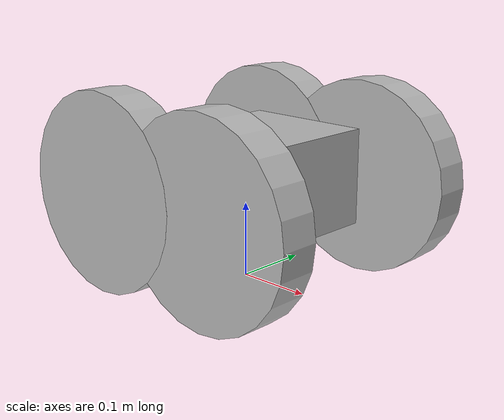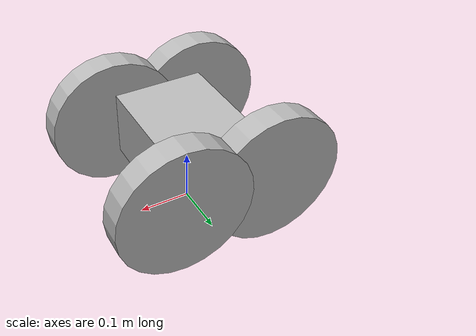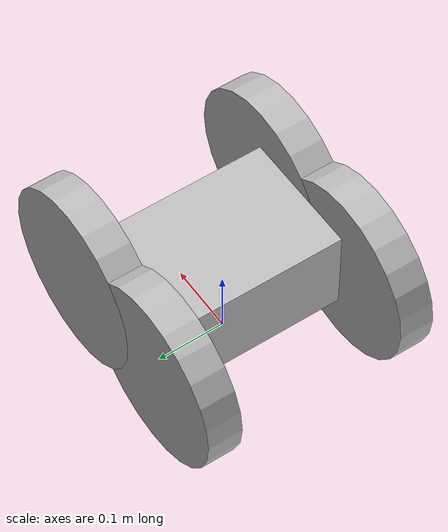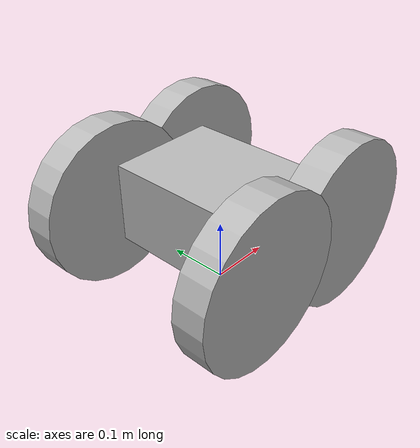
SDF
<?xml version='1.0'?>
<sdf version='1.3'>
  <model name="tank_tread">
    <link name='chassis'>
      <pose>0 0 .13 0 0 0</pose>
      <collision name='collision'>
        <geometry>
          <box>
            <size>.18 .25 .13</size>
          </box>
        </geometry>
      </collision>

      <visual name='visual'>
        <geometry>
          <box>
            <size>.18 .25 .13</size>
          </box>
        </geometry>
      </visual>
    </link>

  <link name="left_backwheel">
  	<pose>-0.09 0.145 0.13 0 1.5707 1.5707</pose>
    <collision name="collision">
      <geometry>
        <cylinder>
          <radius>.13</radius>
          <length>.05</length>
        </cylinder>
      </geometry>
    </collision>
    <visual name="visual">
      <geometry>
        <cylinder>
          <radius>.13</radius>
          <length>.05</length>
        </cylinder>
      </geometry>
    </visual>
  </link>

  <link name="right_backwheel">
  	<pose>-0.09 -0.145 0.13 0 1.5707 1.5707</pose>
    <collision name="collision">
      <geometry>
        <cylinder>
          <radius>.13</radius>
          <length>.05</length>
        </cylinder>
      </geometry>
    </collision>
    <visual name="visual">
      <geometry>
        <cylinder>
          <radius>.13</radius>
          <length>.05</length>
        </cylinder>
      </geometry>
    </visual>
  </link>

  <link name="left_frontwheel">
  	<pose>0.09 0.145 0.13 0 1.5707 1.5707</pose>
    <collision name="collision">
      <geometry>
        <cylinder>
          <radius>.13</radius>
          <length>.05</length>
        </cylinder>
      </geometry>
    </collision>
    <visual name="visual">
      <geometry>
        <cylinder>
          <radius>.13</radius>
          <length>.05</length>
        </cylinder>
      </geometry>
    </visual>
  </link>

  <link name="right_frontwheel">
  	<pose>0.09 -0.145 0.13 0 1.5707 1.5707</pose>
    <collision name="collision">
      <geometry>
        <cylinder>
          <radius>.13</radius>
          <length>.05</length>
        </cylinder>
      </geometry>
    </collision>
    <visual name="visual">
      <geometry>
        <cylinder>
          <radius>.13</radius>
          <length>.05</length>
        </cylinder>
      </geometry>
    </visual>
  </link>

  <joint type="revolute" name="left_backwheel_hinge">
    <pose>0 0 0 0 0 0</pose>
    <child>left_backwheel</child>
    <parent>chassis</parent>
    <axis>
      <xyz>0 1 0</xyz>
    </axis>
  </joint>

  <joint type="revolute" name="left_frontwheel_hinge">
    <pose>0 0 0 0 0 0</pose>
    <child>left_frontwheel</child>
    <parent>chassis</parent>
    <axis>
      <xyz>0 1 0</xyz>
    </axis>
  </joint>

  <joint type="revolute" name="right_backwheel_hinge">
    <pose>0 0 0 0 0 0</pose>
    <child>right_backwheel</child>
    <parent>chassis</parent>
    <axis>
      <xyz>0 1 0</xyz>
    </axis>
  </joint>

  <joint type="revolute" name="right_frontwheel_hinge">
    <pose>0 0 0 0 0 0</pose>
    <child>right_frontwheel</child>
    <parent>chassis</parent>
    <axis>
      <xyz>0 1 0</xyz>
    </axis>
  </joint>

  </model>
</sdf>
